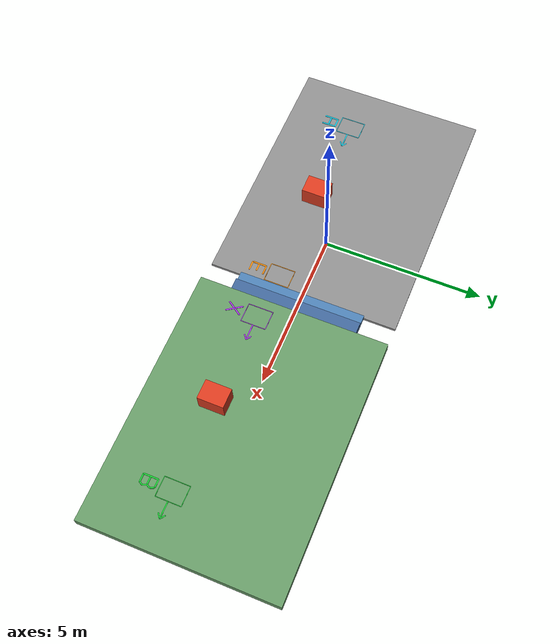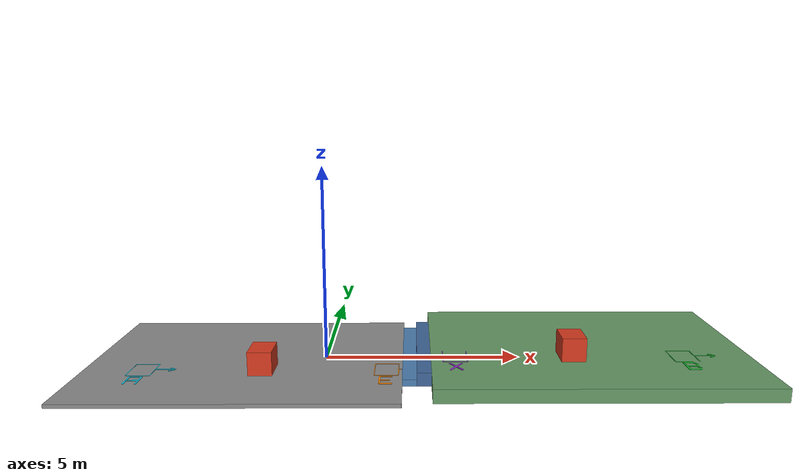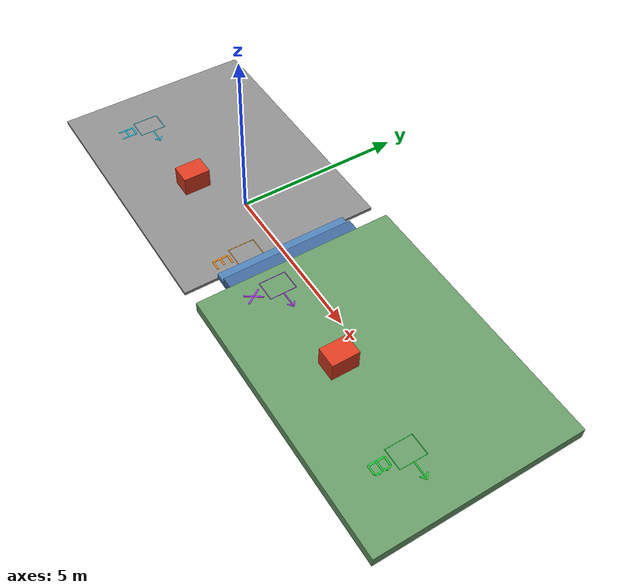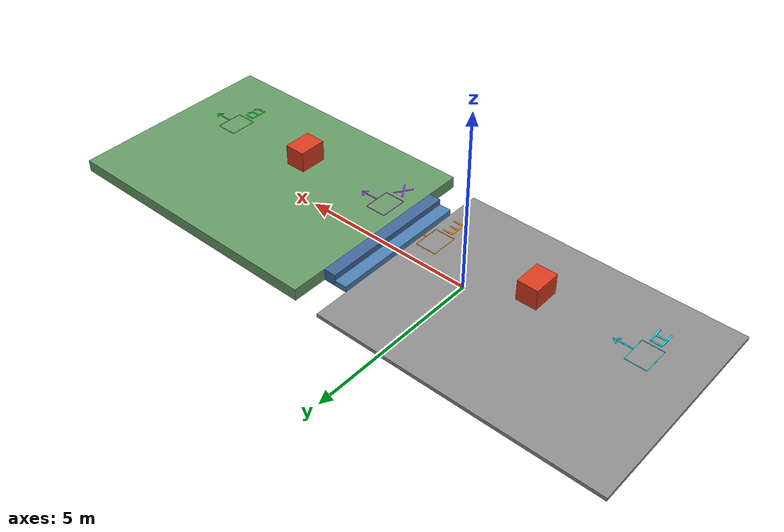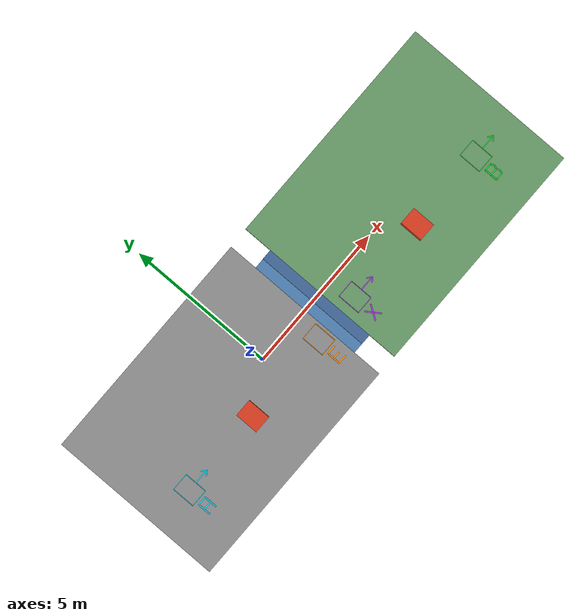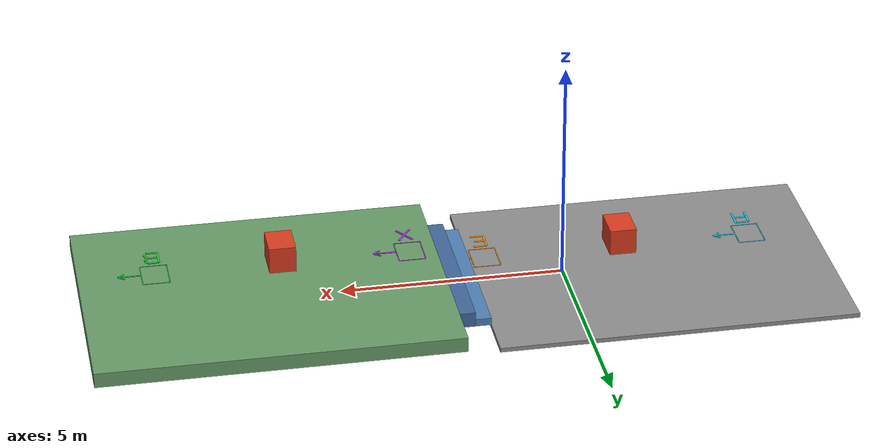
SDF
<?xml version='1.0' encoding='UTF-8'?>
<sdf version="1.6">
  <world name="two_steps">
    <gravity>0 0 -9.81</gravity>
    <physics name="ode" type="ode">
      <max_step_size>0.001</max_step_size>
      <real_time_update_rate>1000</real_time_update_rate>
    </physics>
    <scene>
      <ambient>.6 .6 .6 1</ambient>
      <background>.7 .8 .9 1</background>
    </scene>
    <gui>
      <camera name="user_camera">
        <pose>2.35 -17 14 0 0.70 1.57079632679</pose>
      </camera>
    </gui>
    <light name="sun" type="directional">
      <pose>0 0 5 0 0 0</pose>
      <diffuse>.8 .8 .8 1</diffuse>
      <direction>-.5 .3 -1</direction>
    </light>
    <plugin name="simulation_state" filename="libgazebo_ros_state.so">
      <ros>
        <namespace>/simulation</namespace>
      </ros>
      <update_rate>20</update_rate>
    </plugin>
    <model name="lower_ground">
      <static>true</static>
      <pose>-2 0 -.05 0 0 0</pose>
      <link name="link">
        <collision name="collision">
          <geometry>
            <box>
              <size>8 6 .1</size>
            </box>
          </geometry>
        </collision>
        <visual name="visual">
          <geometry>
            <box>
              <size>8 6 .1</size>
            </box>
          </geometry>
          <material>
            <ambient>.55 .55 .55 1</ambient>
            <diffuse>.55 .55 .55 1</diffuse>
          </material>
        </visual>
      </link>
    </model>
    <model name="step_1">
      <static>true</static>
      <pose>2.175 0 .085 0 0 0</pose>
      <link name="link">
        <collision name="collision">
          <geometry>
            <box>
              <size>.35 4 .17</size>
            </box>
          </geometry>
        </collision>
        <visual name="visual">
          <geometry>
            <box>
              <size>.35 4 .17</size>
            </box>
          </geometry>
          <material>
            <ambient>.3 .5 .7 1</ambient>
            <diffuse>.3 .5 .7 1</diffuse>
          </material>
        </visual>
      </link>
    </model>
    <model name="step_2">
      <static>true</static>
      <pose>2.525 0 .17 0 0 0</pose>
      <link name="link">
        <collision name="collision">
          <geometry>
            <box>
              <size>.35 4 .34</size>
            </box>
          </geometry>
        </collision>
        <visual name="visual">
          <geometry>
            <box>
              <size>.35 4 .34</size>
            </box>
          </geometry>
          <material>
            <ambient>.25 .4 .6 1</ambient>
            <diffuse>.25 .4 .6 1</diffuse>
          </material>
        </visual>
      </link>
    </model>
    <model name="upper_platform">
      <static>true</static>
      <pose>6.7 0 .17 0 0 0</pose>
      <link name="link">
        <collision name="collision">
          <geometry>
            <box>
              <size>8 6 .34</size>
            </box>
          </geometry>
        </collision>
        <visual name="visual">
          <geometry>
            <box>
              <size>8 6 .34</size>
            </box>
          </geometry>
          <material>
            <ambient>.4 .6 .4 1</ambient>
            <diffuse>.4 .6 .4 1</diffuse>
          </material>
        </visual>
      </link>
    </model>
    <model name="lower_obstacle">
      <static>true</static>
      <pose>-1.5 -0.9 0.3 0 0 0</pose>
      <link name="link">
        <collision name="box">
          <pose>0 0 0 0 0 0</pose>
          <geometry>
            <box>
              <size>0.6 0.8 0.6</size>
            </box>
          </geometry>
        </collision>
        <visual name="box">
          <pose>0 0 0 0 0 0</pose>
          <geometry>
            <box>
              <size>0.6 0.8 0.6</size>
            </box>
          </geometry>
          <material>
            <ambient>.85 .23 .12 1</ambient>
            <diffuse>.85 .23 .12 1</diffuse>
          </material>
        </visual>
      </link>
    </model>
    <model name="upper_obstacle">
      <static>true</static>
      <pose>6.2 -0.9 0.64 0 0 0</pose>
      <link name="link">
        <collision name="box">
          <pose>0 0 0 0 0 0</pose>
          <geometry>
            <box>
              <size>0.6 0.8 0.6</size>
            </box>
          </geometry>
        </collision>
        <visual name="box">
          <pose>0 0 0 0 0 0</pose>
          <geometry>
            <box>
              <size>0.6 0.8 0.6</size>
            </box>
          </geometry>
          <material>
            <ambient>.85 .23 .12 1</ambient>
            <diffuse>.85 .23 .12 1</diffuse>
          </material>
        </visual>
      </link>
    </model>
    <model name="waypoint_A">
      <static>true</static>
      <pose>-4.5 -0.9 0.007 0 0 0</pose>
      <link name="link">
        <visual name="outline0">
          <pose>0 0.39 0 0 0 0</pose>
          <geometry>
            <box>
              <size>0.6 0.018 0.006</size>
            </box>
          </geometry>
          <material>
            <ambient>.1 .8 .9 1</ambient>
            <diffuse>.1 .8 .9 1</diffuse>
          </material>
        </visual>
        <visual name="outline1">
          <pose>0 -0.39 0 0 0 0</pose>
          <geometry>
            <box>
              <size>0.6 0.018 0.006</size>
            </box>
          </geometry>
          <material>
            <ambient>.1 .8 .9 1</ambient>
            <diffuse>.1 .8 .9 1</diffuse>
          </material>
        </visual>
        <visual name="outline2">
          <pose>0.3 0 0 0 0 0</pose>
          <geometry>
            <box>
              <size>0.018 0.78 0.006</size>
            </box>
          </geometry>
          <material>
            <ambient>.1 .8 .9 1</ambient>
            <diffuse>.1 .8 .9 1</diffuse>
          </material>
        </visual>
        <visual name="outline3">
          <pose>-0.3 0 0 0 0 0</pose>
          <geometry>
            <box>
              <size>0.018 0.78 0.006</size>
            </box>
          </geometry>
          <material>
            <ambient>.1 .8 .9 1</ambient>
            <diffuse>.1 .8 .9 1</diffuse>
          </material>
        </visual>
        <visual name="heading">
          <pose>0.55 0 0.01 0 0 0</pose>
          <geometry>
            <box>
              <size>0.5 0.035 0.01</size>
            </box>
          </geometry>
          <material>
            <ambient>.1 .8 .9 1</ambient>
            <diffuse>.1 .8 .9 1</diffuse>
          </material>
        </visual>
        <visual name="arrow0">
          <pose>0.74 0.055 0.01 0 0 -0.65</pose>
          <geometry>
            <box>
              <size>0.18 0.035 0.01</size>
            </box>
          </geometry>
          <material>
            <ambient>.1 .8 .9 1</ambient>
            <diffuse>.1 .8 .9 1</diffuse>
          </material>
        </visual>
        <visual name="arrow1">
          <pose>0.74 -0.055 0.01 0 0 0.65</pose>
          <geometry>
            <box>
              <size>0.18 0.035 0.01</size>
            </box>
          </geometry>
          <material>
            <ambient>.1 .8 .9 1</ambient>
            <diffuse>.1 .8 .9 1</diffuse>
          </material>
        </visual>
        <visual name="label0">
          <pose>-0.15 -0.725 0.01 0 0 1.5707963267948966</pose>
          <geometry>
            <box>
              <size>0.45 0.045 0.012</size>
            </box>
          </geometry>
          <material>
            <ambient>.1 .8 .9 1</ambient>
            <diffuse>.1 .8 .9 1</diffuse>
          </material>
        </visual>
        <visual name="label1">
          <pose>0.0 -0.49999999999999994 0.01 0 0 0.0</pose>
          <geometry>
            <box>
              <size>0.3 0.045 0.012</size>
            </box>
          </geometry>
          <material>
            <ambient>.1 .8 .9 1</ambient>
            <diffuse>.1 .8 .9 1</diffuse>
          </material>
        </visual>
        <visual name="label2">
          <pose>0.15 -0.725 0.01 0 0 -1.5707963267948966</pose>
          <geometry>
            <box>
              <size>0.45 0.045 0.012</size>
            </box>
          </geometry>
          <material>
            <ambient>.1 .8 .9 1</ambient>
            <diffuse>.1 .8 .9 1</diffuse>
          </material>
        </visual>
        <visual name="label3">
          <pose>0.0 -0.73 0.01 0 0 0.0</pose>
          <geometry>
            <box>
              <size>0.3 0.045 0.012</size>
            </box>
          </geometry>
          <material>
            <ambient>.1 .8 .9 1</ambient>
            <diffuse>.1 .8 .9 1</diffuse>
          </material>
        </visual>
      </link>
    </model>
    <model name="waypoint_E">
      <static>true</static>
      <pose>1.6 -0.9 0.007 0 0 0</pose>
      <link name="link">
        <visual name="outline0">
          <pose>0 0.39 0 0 0 0</pose>
          <geometry>
            <box>
              <size>0.6 0.018 0.006</size>
            </box>
          </geometry>
          <material>
            <ambient>1 .55 .05 1</ambient>
            <diffuse>1 .55 .05 1</diffuse>
          </material>
        </visual>
        <visual name="outline1">
          <pose>0 -0.39 0 0 0 0</pose>
          <geometry>
            <box>
              <size>0.6 0.018 0.006</size>
            </box>
          </geometry>
          <material>
            <ambient>1 .55 .05 1</ambient>
            <diffuse>1 .55 .05 1</diffuse>
          </material>
        </visual>
        <visual name="outline2">
          <pose>0.3 0 0 0 0 0</pose>
          <geometry>
            <box>
              <size>0.018 0.78 0.006</size>
            </box>
          </geometry>
          <material>
            <ambient>1 .55 .05 1</ambient>
            <diffuse>1 .55 .05 1</diffuse>
          </material>
        </visual>
        <visual name="outline3">
          <pose>-0.3 0 0 0 0 0</pose>
          <geometry>
            <box>
              <size>0.018 0.78 0.006</size>
            </box>
          </geometry>
          <material>
            <ambient>1 .55 .05 1</ambient>
            <diffuse>1 .55 .05 1</diffuse>
          </material>
        </visual>
        <visual name="heading">
          <pose>0.55 0 0.01 0 0 0</pose>
          <geometry>
            <box>
              <size>0.5 0.035 0.01</size>
            </box>
          </geometry>
          <material>
            <ambient>1 .55 .05 1</ambient>
            <diffuse>1 .55 .05 1</diffuse>
          </material>
        </visual>
        <visual name="arrow0">
          <pose>0.74 0.055 0.01 0 0 -0.65</pose>
          <geometry>
            <box>
              <size>0.18 0.035 0.01</size>
            </box>
          </geometry>
          <material>
            <ambient>1 .55 .05 1</ambient>
            <diffuse>1 .55 .05 1</diffuse>
          </material>
        </visual>
        <visual name="arrow1">
          <pose>0.74 -0.055 0.01 0 0 0.65</pose>
          <geometry>
            <box>
              <size>0.18 0.035 0.01</size>
            </box>
          </geometry>
          <material>
            <ambient>1 .55 .05 1</ambient>
            <diffuse>1 .55 .05 1</diffuse>
          </material>
        </visual>
        <visual name="label0">
          <pose>-0.15 -0.725 0.01 0 0 1.5707963267948966</pose>
          <geometry>
            <box>
              <size>0.45 0.045 0.012</size>
            </box>
          </geometry>
          <material>
            <ambient>1 .55 .05 1</ambient>
            <diffuse>1 .55 .05 1</diffuse>
          </material>
        </visual>
        <visual name="label1">
          <pose>0.0 -0.95 0.01 0 0 0.0</pose>
          <geometry>
            <box>
              <size>0.3 0.045 0.012</size>
            </box>
          </geometry>
          <material>
            <ambient>1 .55 .05 1</ambient>
            <diffuse>1 .55 .05 1</diffuse>
          </material>
        </visual>
        <visual name="label2">
          <pose>-0.024999999999999994 -0.73 0.01 0 0 0.0</pose>
          <geometry>
            <box>
              <size>0.25 0.045 0.012</size>
            </box>
          </geometry>
          <material>
            <ambient>1 .55 .05 1</ambient>
            <diffuse>1 .55 .05 1</diffuse>
          </material>
        </visual>
        <visual name="label3">
          <pose>0.0 -0.49999999999999994 0.01 0 0 0.0</pose>
          <geometry>
            <box>
              <size>0.3 0.045 0.012</size>
            </box>
          </geometry>
          <material>
            <ambient>1 .55 .05 1</ambient>
            <diffuse>1 .55 .05 1</diffuse>
          </material>
        </visual>
      </link>
    </model>
    <model name="waypoint_X">
      <static>true</static>
      <pose>3.3 -0.9 0.34700000000000003 0 0 0</pose>
      <link name="link">
        <visual name="outline0">
          <pose>0 0.39 0 0 0 0</pose>
          <geometry>
            <box>
              <size>0.6 0.018 0.006</size>
            </box>
          </geometry>
          <material>
            <ambient>.65 .2 .9 1</ambient>
            <diffuse>.65 .2 .9 1</diffuse>
          </material>
        </visual>
        <visual name="outline1">
          <pose>0 -0.39 0 0 0 0</pose>
          <geometry>
            <box>
              <size>0.6 0.018 0.006</size>
            </box>
          </geometry>
          <material>
            <ambient>.65 .2 .9 1</ambient>
            <diffuse>.65 .2 .9 1</diffuse>
          </material>
        </visual>
        <visual name="outline2">
          <pose>0.3 0 0 0 0 0</pose>
          <geometry>
            <box>
              <size>0.018 0.78 0.006</size>
            </box>
          </geometry>
          <material>
            <ambient>.65 .2 .9 1</ambient>
            <diffuse>.65 .2 .9 1</diffuse>
          </material>
        </visual>
        <visual name="outline3">
          <pose>-0.3 0 0 0 0 0</pose>
          <geometry>
            <box>
              <size>0.018 0.78 0.006</size>
            </box>
          </geometry>
          <material>
            <ambient>.65 .2 .9 1</ambient>
            <diffuse>.65 .2 .9 1</diffuse>
          </material>
        </visual>
        <visual name="heading">
          <pose>0.55 0 0.01 0 0 0</pose>
          <geometry>
            <box>
              <size>0.5 0.035 0.01</size>
            </box>
          </geometry>
          <material>
            <ambient>.65 .2 .9 1</ambient>
            <diffuse>.65 .2 .9 1</diffuse>
          </material>
        </visual>
        <visual name="arrow0">
          <pose>0.74 0.055 0.01 0 0 -0.65</pose>
          <geometry>
            <box>
              <size>0.18 0.035 0.01</size>
            </box>
          </geometry>
          <material>
            <ambient>.65 .2 .9 1</ambient>
            <diffuse>.65 .2 .9 1</diffuse>
          </material>
        </visual>
        <visual name="arrow1">
          <pose>0.74 -0.055 0.01 0 0 0.65</pose>
          <geometry>
            <box>
              <size>0.18 0.035 0.01</size>
            </box>
          </geometry>
          <material>
            <ambient>.65 .2 .9 1</ambient>
            <diffuse>.65 .2 .9 1</diffuse>
          </material>
        </visual>
        <visual name="label0">
          <pose>0.0 -0.725 0.01 0 0 0.982793723247329</pose>
          <geometry>
            <box>
              <size>0.5408326913195984 0.045 0.012</size>
            </box>
          </geometry>
          <material>
            <ambient>.65 .2 .9 1</ambient>
            <diffuse>.65 .2 .9 1</diffuse>
          </material>
        </visual>
        <visual name="label1">
          <pose>0.0 -0.725 0.01 0 0 -0.982793723247329</pose>
          <geometry>
            <box>
              <size>0.5408326913195984 0.045 0.012</size>
            </box>
          </geometry>
          <material>
            <ambient>.65 .2 .9 1</ambient>
            <diffuse>.65 .2 .9 1</diffuse>
          </material>
        </visual>
      </link>
    </model>
    <model name="waypoint_B">
      <static>true</static>
      <pose>9.0 -0.9 0.34700000000000003 0 0 0</pose>
      <link name="link">
        <visual name="outline0">
          <pose>0 0.39 0 0 0 0</pose>
          <geometry>
            <box>
              <size>0.6 0.018 0.006</size>
            </box>
          </geometry>
          <material>
            <ambient>.1 .8 .2 1</ambient>
            <diffuse>.1 .8 .2 1</diffuse>
          </material>
        </visual>
        <visual name="outline1">
          <pose>0 -0.39 0 0 0 0</pose>
          <geometry>
            <box>
              <size>0.6 0.018 0.006</size>
            </box>
          </geometry>
          <material>
            <ambient>.1 .8 .2 1</ambient>
            <diffuse>.1 .8 .2 1</diffuse>
          </material>
        </visual>
        <visual name="outline2">
          <pose>0.3 0 0 0 0 0</pose>
          <geometry>
            <box>
              <size>0.018 0.78 0.006</size>
            </box>
          </geometry>
          <material>
            <ambient>.1 .8 .2 1</ambient>
            <diffuse>.1 .8 .2 1</diffuse>
          </material>
        </visual>
        <visual name="outline3">
          <pose>-0.3 0 0 0 0 0</pose>
          <geometry>
            <box>
              <size>0.018 0.78 0.006</size>
            </box>
          </geometry>
          <material>
            <ambient>.1 .8 .2 1</ambient>
            <diffuse>.1 .8 .2 1</diffuse>
          </material>
        </visual>
        <visual name="heading">
          <pose>0.55 0 0.01 0 0 0</pose>
          <geometry>
            <box>
              <size>0.5 0.035 0.01</size>
            </box>
          </geometry>
          <material>
            <ambient>.1 .8 .2 1</ambient>
            <diffuse>.1 .8 .2 1</diffuse>
          </material>
        </visual>
        <visual name="arrow0">
          <pose>0.74 0.055 0.01 0 0 -0.65</pose>
          <geometry>
            <box>
              <size>0.18 0.035 0.01</size>
            </box>
          </geometry>
          <material>
            <ambient>.1 .8 .2 1</ambient>
            <diffuse>.1 .8 .2 1</diffuse>
          </material>
        </visual>
        <visual name="arrow1">
          <pose>0.74 -0.055 0.01 0 0 0.65</pose>
          <geometry>
            <box>
              <size>0.18 0.035 0.01</size>
            </box>
          </geometry>
          <material>
            <ambient>.1 .8 .2 1</ambient>
            <diffuse>.1 .8 .2 1</diffuse>
          </material>
        </visual>
        <visual name="label0">
          <pose>-0.15 -0.725 0.01 0 0 1.5707963267948966</pose>
          <geometry>
            <box>
              <size>0.45 0.045 0.012</size>
            </box>
          </geometry>
          <material>
            <ambient>.1 .8 .2 1</ambient>
            <diffuse>.1 .8 .2 1</diffuse>
          </material>
        </visual>
        <visual name="label1">
          <pose>-0.024999999999999994 -0.95 0.01 0 0 0.0</pose>
          <geometry>
            <box>
              <size>0.25 0.045 0.012</size>
            </box>
          </geometry>
          <material>
            <ambient>.1 .8 .2 1</ambient>
            <diffuse>.1 .8 .2 1</diffuse>
          </material>
        </visual>
        <visual name="label2">
          <pose>0.12500000000000003 -0.8999999999999999 0.01 0 0 1.1071487177940906</pose>
          <geometry>
            <box>
              <size>0.1118033988749895 0.045 0.012</size>
            </box>
          </geometry>
          <material>
            <ambient>.1 .8 .2 1</ambient>
            <diffuse>.1 .8 .2 1</diffuse>
          </material>
        </visual>
        <visual name="label3">
          <pose>0.12500000000000003 -0.7899999999999999 0.01 0 0 1.965587446494658</pose>
          <geometry>
            <box>
              <size>0.12999999999999998 0.045 0.012</size>
            </box>
          </geometry>
          <material>
            <ambient>.1 .8 .2 1</ambient>
            <diffuse>.1 .8 .2 1</diffuse>
          </material>
        </visual>
        <visual name="label4">
          <pose>-0.024999999999999994 -0.73 0.01 0 0 0.0</pose>
          <geometry>
            <box>
              <size>0.25 0.045 0.012</size>
            </box>
          </geometry>
          <material>
            <ambient>.1 .8 .2 1</ambient>
            <diffuse>.1 .8 .2 1</diffuse>
          </material>
        </visual>
        <visual name="label5">
          <pose>0.12500000000000003 -0.6749999999999999 0.01 0 0 1.1441688336680207</pose>
          <geometry>
            <box>
              <size>0.12083045973594572 0.045 0.012</size>
            </box>
          </geometry>
          <material>
            <ambient>.1 .8 .2 1</ambient>
            <diffuse>.1 .8 .2 1</diffuse>
          </material>
        </visual>
        <visual name="label6">
          <pose>0.12500000000000003 -0.5599999999999999 0.01 0 0 1.965587446494658</pose>
          <geometry>
            <box>
              <size>0.12999999999999998 0.045 0.012</size>
            </box>
          </geometry>
          <material>
            <ambient>.1 .8 .2 1</ambient>
            <diffuse>.1 .8 .2 1</diffuse>
          </material>
        </visual>
        <visual name="label7">
          <pose>-0.024999999999999994 -0.49999999999999994 0.01 0 0 0.0</pose>
          <geometry>
            <box>
              <size>0.25 0.045 0.012</size>
            </box>
          </geometry>
          <material>
            <ambient>.1 .8 .2 1</ambient>
            <diffuse>.1 .8 .2 1</diffuse>
          </material>
        </visual>
      </link>
    </model>
  </world>
</sdf>
